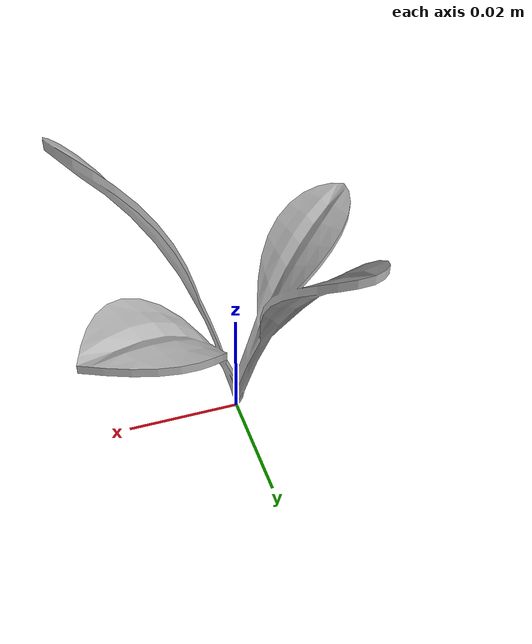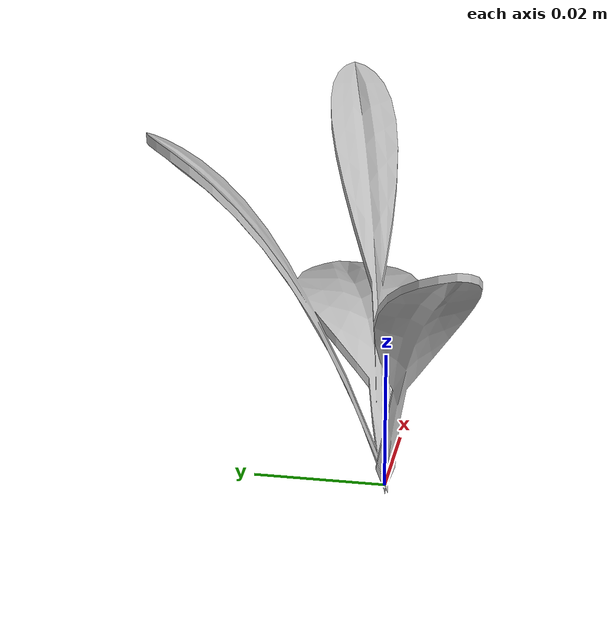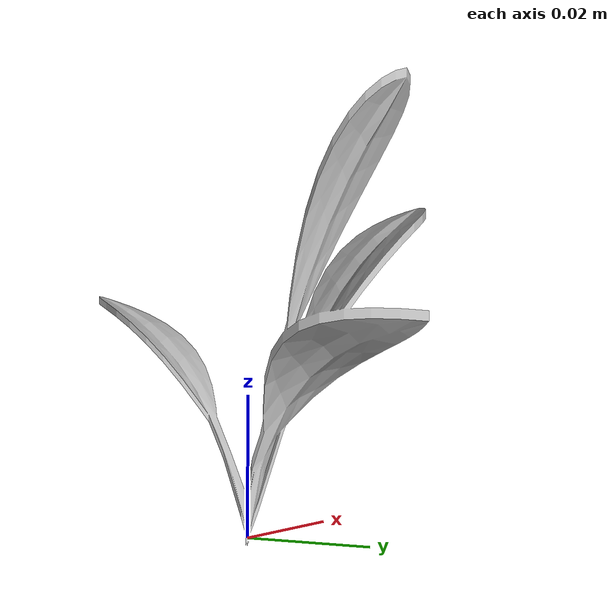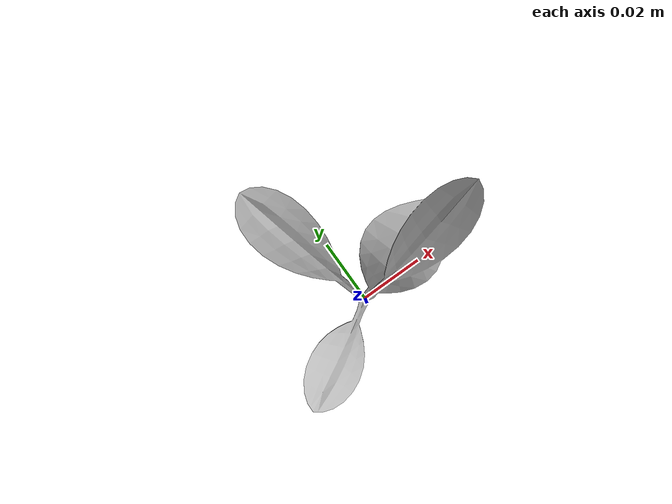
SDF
<sdf version="1.6">
  <model name="sugar_beet_15">
    <static>true</static>
    <link name="body">
      <visual name="visual">
        <geometry>
          <mesh>
            <uri>file:///sugar_beet_15/media/sugar_beet.dae</uri>
          </mesh>
        </geometry>
      </visual>
    </link>
  </model>
</sdf>
